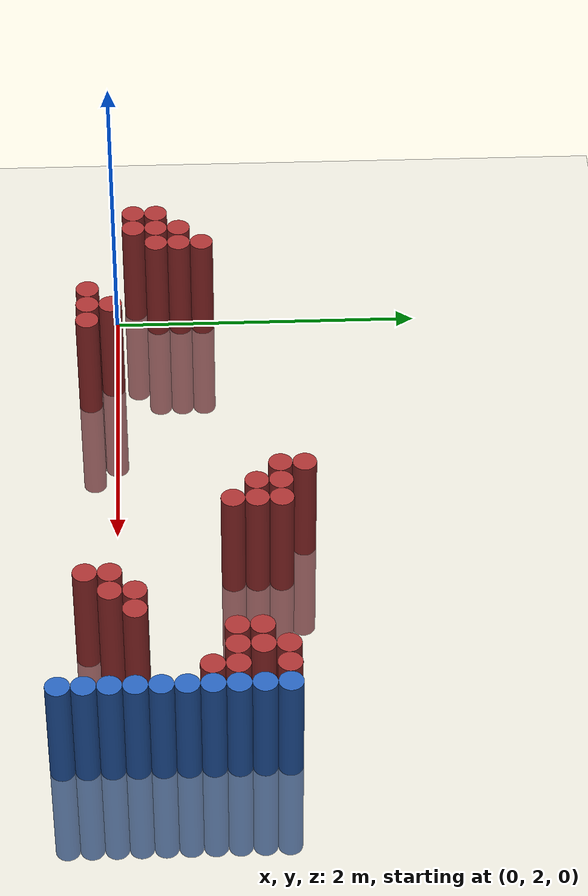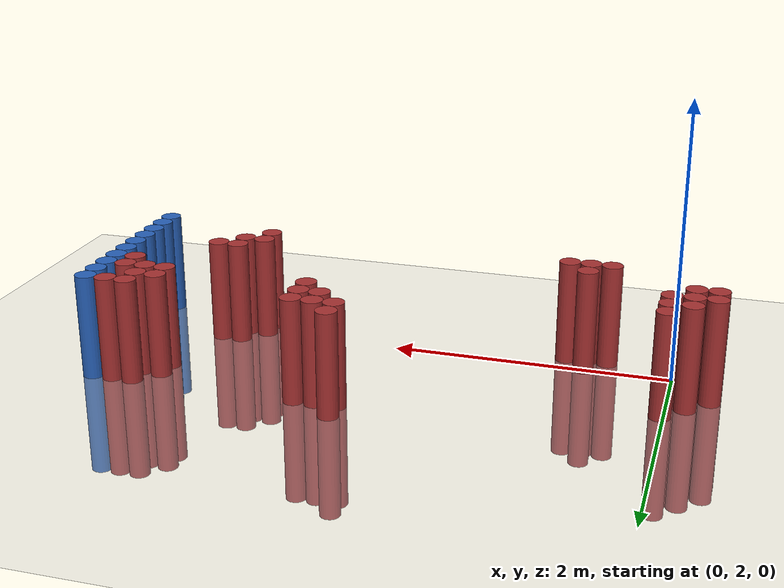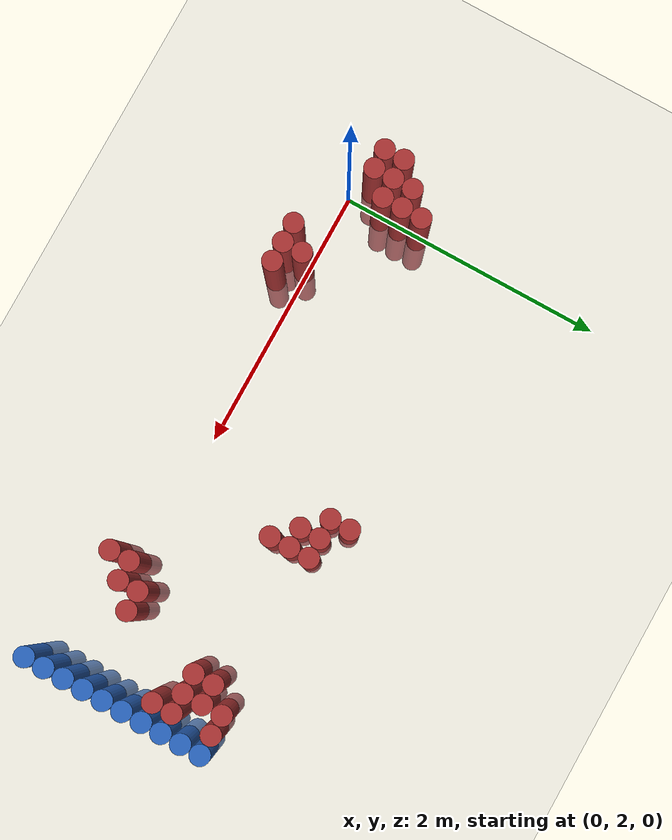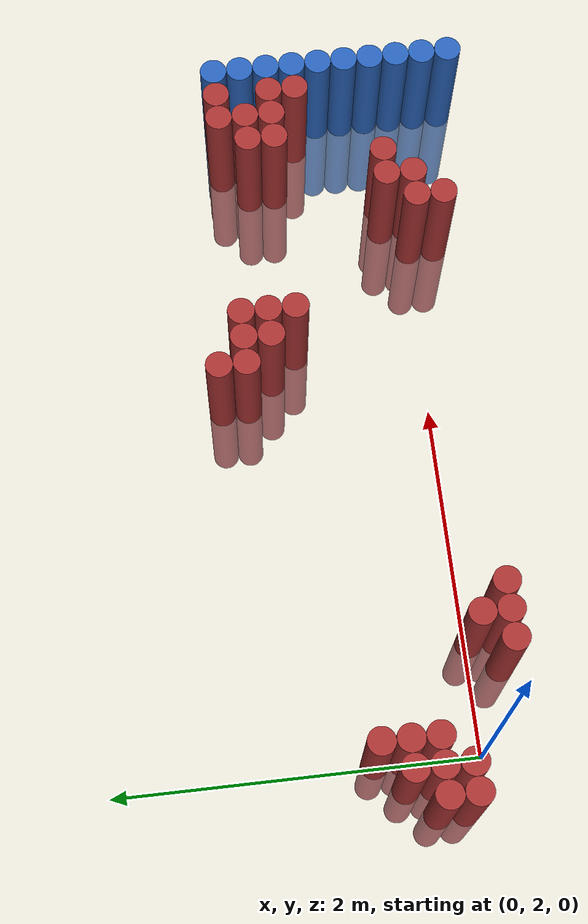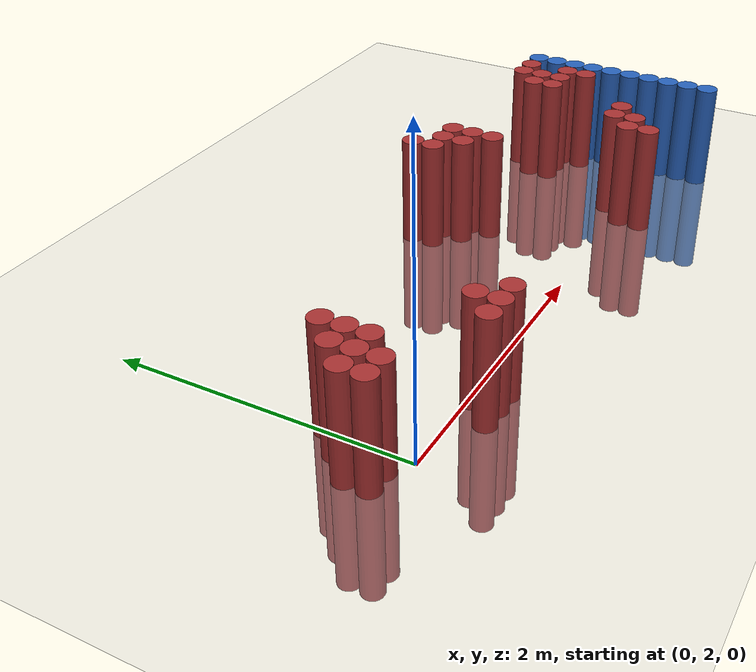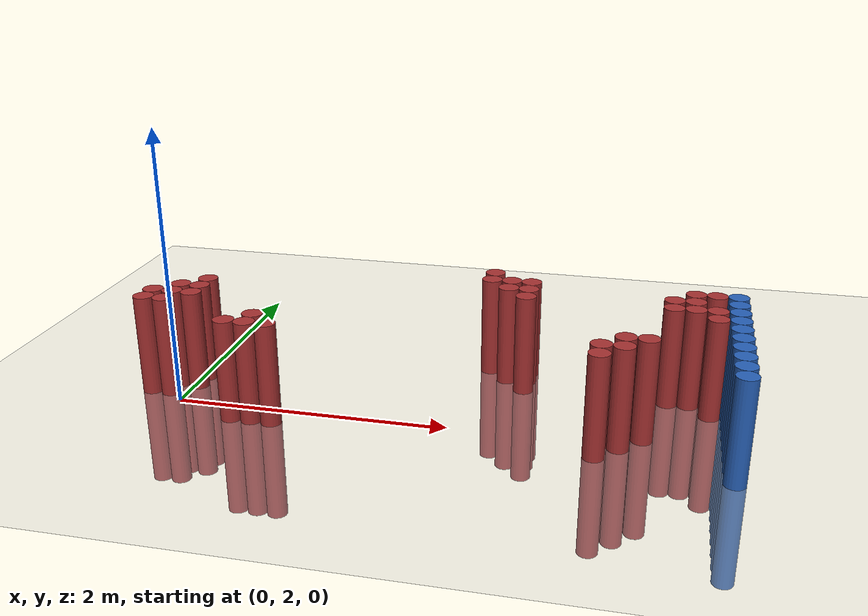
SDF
<sdf version="1.6">
 <world name="default">
  <model name="ground_plane">
   <static>1</static>
   <link name="link">
    <collision name="collision">
     <geometry><plane><normal>0 0 1</normal><size>100 100</size></plane></geometry>
     <surface><friction><ode><mu>100</mu><mu2>50</mu2></ode></friction></surface>
    </collision>
    <visual name="visual">
     <cast_shadows>0</cast_shadows>
     <geometry><plane><normal>0 0 1</normal><size>100 100</size></plane></geometry>
     <material>
      <script><uri>file://media/materials/scripts/gazebo.material</uri><name>Gazebo/Grey</name></script>
     </material>
    </visual>
   </link>
  </model>
  <model name="unit_cylinder_138">
   <static>1</static>
   <pose>3.925000 1.825000 0.000000 0.000000 0.000000 0.000000</pose>
   <link name="link">
    <inertial>
     <mass>1</mass>
     <inertia><ixx>0.145833</ixx><ixy>0</ixy><ixz>0</ixz><iyy>0.145833</iyy><iyz>0</iyz><izz>0.125</izz></inertia>
    </inertial>
    <collision name="collision">
     <geometry><cylinder><radius>0.075000</radius><length>1.5</length></cylinder></geometry>
    </collision>
    <visual name="visual">
     <geometry><cylinder><radius>0.075000</radius><length>1.5</length></cylinder></geometry>
     <material>
      <ambient>0.152000 0.379000 0.720000 1</ambient>
      <diffuse>0.152000 0.379000 0.720000 1</diffuse>
     </material>
     <material>
      <script><name>Gazebo/Grey</name><uri>file://media/materials/scripts/gazebo.material</uri></script>
     </material>
    </visual>
   </link>
  </model>
  <model name="unit_cylinder_140">
   <static>1</static>
   <pose>3.925000 1.975000 0.000000 0.000000 0.000000 0.000000</pose>
   <link name="link">
    <inertial>
     <mass>1</mass>
     <inertia><ixx>0.145833</ixx><ixy>0</ixy><ixz>0</ixz><iyy>0.145833</iyy><iyz>0</iyz><izz>0.125</izz></inertia>
    </inertial>
    <collision name="collision">
     <geometry><cylinder><radius>0.075000</radius><length>1.5</length></cylinder></geometry>
    </collision>
    <visual name="visual">
     <geometry><cylinder><radius>0.075000</radius><length>1.5</length></cylinder></geometry>
     <material>
      <ambient>0.152000 0.379000 0.720000 1</ambient>
      <diffuse>0.152000 0.379000 0.720000 1</diffuse>
     </material>
     <material>
      <script><name>Gazebo/Grey</name><uri>file://media/materials/scripts/gazebo.material</uri></script>
     </material>
    </visual>
   </link>
  </model>
  <model name="unit_cylinder_142">
   <static>1</static>
   <pose>3.925000 2.125000 0.000000 0.000000 0.000000 0.000000</pose>
   <link name="link">
    <inertial>
     <mass>1</mass>
     <inertia><ixx>0.145833</ixx><ixy>0</ixy><ixz>0</ixz><iyy>0.145833</iyy><iyz>0</iyz><izz>0.125</izz></inertia>
    </inertial>
    <collision name="collision">
     <geometry><cylinder><radius>0.075000</radius><length>1.5</length></cylinder></geometry>
    </collision>
    <visual name="visual">
     <geometry><cylinder><radius>0.075000</radius><length>1.5</length></cylinder></geometry>
     <material>
      <ambient>0.152000 0.379000 0.720000 1</ambient>
      <diffuse>0.152000 0.379000 0.720000 1</diffuse>
     </material>
     <material>
      <script><name>Gazebo/Grey</name><uri>file://media/materials/scripts/gazebo.material</uri></script>
     </material>
    </visual>
   </link>
  </model>
  <model name="unit_cylinder_144">
   <static>1</static>
   <pose>3.925000 2.275000 0.000000 0.000000 0.000000 0.000000</pose>
   <link name="link">
    <inertial>
     <mass>1</mass>
     <inertia><ixx>0.145833</ixx><ixy>0</ixy><ixz>0</ixz><iyy>0.145833</iyy><iyz>0</iyz><izz>0.125</izz></inertia>
    </inertial>
    <collision name="collision">
     <geometry><cylinder><radius>0.075000</radius><length>1.5</length></cylinder></geometry>
    </collision>
    <visual name="visual">
     <geometry><cylinder><radius>0.075000</radius><length>1.5</length></cylinder></geometry>
     <material>
      <ambient>0.152000 0.379000 0.720000 1</ambient>
      <diffuse>0.152000 0.379000 0.720000 1</diffuse>
     </material>
     <material>
      <script><name>Gazebo/Grey</name><uri>file://media/materials/scripts/gazebo.material</uri></script>
     </material>
    </visual>
   </link>
  </model>
  <model name="unit_cylinder_146">
   <static>1</static>
   <pose>3.925000 2.425000 0.000000 0.000000 0.000000 0.000000</pose>
   <link name="link">
    <inertial>
     <mass>1</mass>
     <inertia><ixx>0.145833</ixx><ixy>0</ixy><ixz>0</ixz><iyy>0.145833</iyy><iyz>0</iyz><izz>0.125</izz></inertia>
    </inertial>
    <collision name="collision">
     <geometry><cylinder><radius>0.075000</radius><length>1.5</length></cylinder></geometry>
    </collision>
    <visual name="visual">
     <geometry><cylinder><radius>0.075000</radius><length>1.5</length></cylinder></geometry>
     <material>
      <ambient>0.152000 0.379000 0.720000 1</ambient>
      <diffuse>0.152000 0.379000 0.720000 1</diffuse>
     </material>
     <material>
      <script><name>Gazebo/Grey</name><uri>file://media/materials/scripts/gazebo.material</uri></script>
     </material>
    </visual>
   </link>
  </model>
  <model name="unit_cylinder_148">
   <static>1</static>
   <pose>3.925000 2.575000 0.000000 0.000000 0.000000 0.000000</pose>
   <link name="link">
    <inertial>
     <mass>1</mass>
     <inertia><ixx>0.145833</ixx><ixy>0</ixy><ixz>0</ixz><iyy>0.145833</iyy><iyz>0</iyz><izz>0.125</izz></inertia>
    </inertial>
    <collision name="collision">
     <geometry><cylinder><radius>0.075000</radius><length>1.5</length></cylinder></geometry>
    </collision>
    <visual name="visual">
     <geometry><cylinder><radius>0.075000</radius><length>1.5</length></cylinder></geometry>
     <material>
      <ambient>0.152000 0.379000 0.720000 1</ambient>
      <diffuse>0.152000 0.379000 0.720000 1</diffuse>
     </material>
     <material>
      <script><name>Gazebo/Grey</name><uri>file://media/materials/scripts/gazebo.material</uri></script>
     </material>
    </visual>
   </link>
  </model>
  <model name="unit_cylinder_150">
   <static>1</static>
   <pose>3.925000 2.725000 0.000000 0.000000 0.000000 0.000000</pose>
   <link name="link">
    <inertial>
     <mass>1</mass>
     <inertia><ixx>0.145833</ixx><ixy>0</ixy><ixz>0</ixz><iyy>0.145833</iyy><iyz>0</iyz><izz>0.125</izz></inertia>
    </inertial>
    <collision name="collision">
     <geometry><cylinder><radius>0.075000</radius><length>1.5</length></cylinder></geometry>
    </collision>
    <visual name="visual">
     <geometry><cylinder><radius>0.075000</radius><length>1.5</length></cylinder></geometry>
     <material>
      <ambient>0.152000 0.379000 0.720000 1</ambient>
      <diffuse>0.152000 0.379000 0.720000 1</diffuse>
     </material>
     <material>
      <script><name>Gazebo/Grey</name><uri>file://media/materials/scripts/gazebo.material</uri></script>
     </material>
    </visual>
   </link>
  </model>
  <model name="unit_cylinder_152">
   <static>1</static>
   <pose>3.925000 2.875000 0.000000 0.000000 0.000000 0.000000</pose>
   <link name="link">
    <inertial>
     <mass>1</mass>
     <inertia><ixx>0.145833</ixx><ixy>0</ixy><ixz>0</ixz><iyy>0.145833</iyy><iyz>0</iyz><izz>0.125</izz></inertia>
    </inertial>
    <collision name="collision">
     <geometry><cylinder><radius>0.075000</radius><length>1.5</length></cylinder></geometry>
    </collision>
    <visual name="visual">
     <geometry><cylinder><radius>0.075000</radius><length>1.5</length></cylinder></geometry>
     <material>
      <ambient>0.152000 0.379000 0.720000 1</ambient>
      <diffuse>0.152000 0.379000 0.720000 1</diffuse>
     </material>
     <material>
      <script><name>Gazebo/Grey</name><uri>file://media/materials/scripts/gazebo.material</uri></script>
     </material>
    </visual>
   </link>
  </model>
  <model name="unit_cylinder_154">
   <static>1</static>
   <pose>3.925000 3.025000 0.000000 0.000000 0.000000 0.000000</pose>
   <link name="link">
    <inertial>
     <mass>1</mass>
     <inertia><ixx>0.145833</ixx><ixy>0</ixy><ixz>0</ixz><iyy>0.145833</iyy><iyz>0</iyz><izz>0.125</izz></inertia>
    </inertial>
    <collision name="collision">
     <geometry><cylinder><radius>0.075000</radius><length>1.5</length></cylinder></geometry>
    </collision>
    <visual name="visual">
     <geometry><cylinder><radius>0.075000</radius><length>1.5</length></cylinder></geometry>
     <material>
      <ambient>0.152000 0.379000 0.720000 1</ambient>
      <diffuse>0.152000 0.379000 0.720000 1</diffuse>
     </material>
     <material>
      <script><name>Gazebo/Grey</name><uri>file://media/materials/scripts/gazebo.material</uri></script>
     </material>
    </visual>
   </link>
  </model>
  <model name="unit_cylinder_411">
   <static>1</static>
   <pose>-0.275000 2.125000 0.000000 0.000000 0.000000 0.000000</pose>
   <link name="link">
    <inertial>
     <mass>1</mass>
     <inertia><ixx>0.145833</ixx><ixy>0</ixy><ixz>0</ixz><iyy>0.145833</iyy><iyz>0</iyz><izz>0.125</izz></inertia>
    </inertial>
    <collision name="collision">
     <geometry><cylinder><radius>0.075000</radius><length>1.5</length></cylinder></geometry>
    </collision>
    <visual name="visual">
     <geometry><cylinder><radius>0.075000</radius><length>1.5</length></cylinder></geometry>
     <material>
      <ambient>0.648000 0.192000 0.192000 1</ambient>
      <diffuse>0.648000 0.192000 0.192000 1</diffuse>
     </material>
     <material>
      <script><name>Gazebo/Grey</name><uri>file://media/materials/scripts/gazebo.material</uri></script>
     </material>
    </visual>
   </link>
  </model>
  <model name="unit_cylinder_412">
   <static>1</static>
   <pose>-0.275000 2.275000 0.000000 0.000000 0.000000 0.000000</pose>
   <link name="link">
    <inertial>
     <mass>1</mass>
     <inertia><ixx>0.145833</ixx><ixy>0</ixy><ixz>0</ixz><iyy>0.145833</iyy><iyz>0</iyz><izz>0.125</izz></inertia>
    </inertial>
    <collision name="collision">
     <geometry><cylinder><radius>0.075000</radius><length>1.5</length></cylinder></geometry>
    </collision>
    <visual name="visual">
     <geometry><cylinder><radius>0.075000</radius><length>1.5</length></cylinder></geometry>
     <material>
      <ambient>0.648000 0.192000 0.192000 1</ambient>
      <diffuse>0.648000 0.192000 0.192000 1</diffuse>
     </material>
     <material>
      <script><name>Gazebo/Grey</name><uri>file://media/materials/scripts/gazebo.material</uri></script>
     </material>
    </visual>
   </link>
  </model>
  <model name="unit_cylinder_421">
   <static>1</static>
   <pose>-0.125000 2.125000 0.000000 0.000000 0.000000 0.000000</pose>
   <link name="link">
    <inertial>
     <mass>1</mass>
     <inertia><ixx>0.145833</ixx><ixy>0</ixy><ixz>0</ixz><iyy>0.145833</iyy><iyz>0</iyz><izz>0.125</izz></inertia>
    </inertial>
    <collision name="collision">
     <geometry><cylinder><radius>0.075000</radius><length>1.5</length></cylinder></geometry>
    </collision>
    <visual name="visual">
     <geometry><cylinder><radius>0.075000</radius><length>1.5</length></cylinder></geometry>
     <material>
      <ambient>0.648000 0.192000 0.192000 1</ambient>
      <diffuse>0.648000 0.192000 0.192000 1</diffuse>
     </material>
     <material>
      <script><name>Gazebo/Grey</name><uri>file://media/materials/scripts/gazebo.material</uri></script>
     </material>
    </visual>
   </link>
  </model>
  <model name="unit_cylinder_422">
   <static>1</static>
   <pose>-0.125000 2.275000 0.000000 0.000000 0.000000 0.000000</pose>
   <link name="link">
    <inertial>
     <mass>1</mass>
     <inertia><ixx>0.145833</ixx><ixy>0</ixy><ixz>0</ixz><iyy>0.145833</iyy><iyz>0</iyz><izz>0.125</izz></inertia>
    </inertial>
    <collision name="collision">
     <geometry><cylinder><radius>0.075000</radius><length>1.5</length></cylinder></geometry>
    </collision>
    <visual name="visual">
     <geometry><cylinder><radius>0.075000</radius><length>1.5</length></cylinder></geometry>
     <material>
      <ambient>0.648000 0.192000 0.192000 1</ambient>
      <diffuse>0.648000 0.192000 0.192000 1</diffuse>
     </material>
     <material>
      <script><name>Gazebo/Grey</name><uri>file://media/materials/scripts/gazebo.material</uri></script>
     </material>
    </visual>
   </link>
  </model>
  <model name="unit_cylinder_423">
   <static>1</static>
   <pose>-0.125000 2.425000 0.000000 0.000000 0.000000 0.000000</pose>
   <link name="link">
    <inertial>
     <mass>1</mass>
     <inertia><ixx>0.145833</ixx><ixy>0</ixy><ixz>0</ixz><iyy>0.145833</iyy><iyz>0</iyz><izz>0.125</izz></inertia>
    </inertial>
    <collision name="collision">
     <geometry><cylinder><radius>0.075000</radius><length>1.5</length></cylinder></geometry>
    </collision>
    <visual name="visual">
     <geometry><cylinder><radius>0.075000</radius><length>1.5</length></cylinder></geometry>
     <material>
      <ambient>0.648000 0.192000 0.192000 1</ambient>
      <diffuse>0.648000 0.192000 0.192000 1</diffuse>
     </material>
     <material>
      <script><name>Gazebo/Grey</name><uri>file://media/materials/scripts/gazebo.material</uri></script>
     </material>
    </visual>
   </link>
  </model>
  <model name="unit_cylinder_435">
   <static>1</static>
   <pose>0.025000 2.275000 0.000000 0.000000 0.000000 0.000000</pose>
   <link name="link">
    <inertial>
     <mass>1</mass>
     <inertia><ixx>0.145833</ixx><ixy>0</ixy><ixz>0</ixz><iyy>0.145833</iyy><iyz>0</iyz><izz>0.125</izz></inertia>
    </inertial>
    <collision name="collision">
     <geometry><cylinder><radius>0.075000</radius><length>1.5</length></cylinder></geometry>
    </collision>
    <visual name="visual">
     <geometry><cylinder><radius>0.075000</radius><length>1.5</length></cylinder></geometry>
     <material>
      <ambient>0.648000 0.192000 0.192000 1</ambient>
      <diffuse>0.648000 0.192000 0.192000 1</diffuse>
     </material>
     <material>
      <script><name>Gazebo/Grey</name><uri>file://media/materials/scripts/gazebo.material</uri></script>
     </material>
    </visual>
   </link>
  </model>
  <model name="unit_cylinder_436">
   <static>1</static>
   <pose>0.025000 2.425000 0.000000 0.000000 0.000000 0.000000</pose>
   <link name="link">
    <inertial>
     <mass>1</mass>
     <inertia><ixx>0.145833</ixx><ixy>0</ixy><ixz>0</ixz><iyy>0.145833</iyy><iyz>0</iyz><izz>0.125</izz></inertia>
    </inertial>
    <collision name="collision">
     <geometry><cylinder><radius>0.075000</radius><length>1.5</length></cylinder></geometry>
    </collision>
    <visual name="visual">
     <geometry><cylinder><radius>0.075000</radius><length>1.5</length></cylinder></geometry>
     <material>
      <ambient>0.648000 0.192000 0.192000 1</ambient>
      <diffuse>0.648000 0.192000 0.192000 1</diffuse>
     </material>
     <material>
      <script><name>Gazebo/Grey</name><uri>file://media/materials/scripts/gazebo.material</uri></script>
     </material>
    </visual>
   </link>
  </model>
  <model name="unit_cylinder_437">
   <static>1</static>
   <pose>0.025000 2.575000 0.000000 0.000000 0.000000 0.000000</pose>
   <link name="link">
    <inertial>
     <mass>1</mass>
     <inertia><ixx>0.145833</ixx><ixy>0</ixy><ixz>0</ixz><iyy>0.145833</iyy><iyz>0</iyz><izz>0.125</izz></inertia>
    </inertial>
    <collision name="collision">
     <geometry><cylinder><radius>0.075000</radius><length>1.5</length></cylinder></geometry>
    </collision>
    <visual name="visual">
     <geometry><cylinder><radius>0.075000</radius><length>1.5</length></cylinder></geometry>
     <material>
      <ambient>0.648000 0.192000 0.192000 1</ambient>
      <diffuse>0.648000 0.192000 0.192000 1</diffuse>
     </material>
     <material>
      <script><name>Gazebo/Grey</name><uri>file://media/materials/scripts/gazebo.material</uri></script>
     </material>
    </visual>
   </link>
  </model>
  <model name="unit_cylinder_452">
   <static>1</static>
   <pose>0.475000 1.825000 0.000000 0.000000 0.000000 0.000000</pose>
   <link name="link">
    <inertial>
     <mass>1</mass>
     <inertia><ixx>0.145833</ixx><ixy>0</ixy><ixz>0</ixz><iyy>0.145833</iyy><iyz>0</iyz><izz>0.125</izz></inertia>
    </inertial>
    <collision name="collision">
     <geometry><cylinder><radius>0.075000</radius><length>1.5</length></cylinder></geometry>
    </collision>
    <visual name="visual">
     <geometry><cylinder><radius>0.075000</radius><length>1.5</length></cylinder></geometry>
     <material>
      <ambient>0.648000 0.192000 0.192000 1</ambient>
      <diffuse>0.648000 0.192000 0.192000 1</diffuse>
     </material>
     <material>
      <script><name>Gazebo/Grey</name><uri>file://media/materials/scripts/gazebo.material</uri></script>
     </material>
    </visual>
   </link>
  </model>
  <model name="unit_cylinder_454">
   <static>1</static>
   <pose>0.625000 1.825000 0.000000 0.000000 0.000000 0.000000</pose>
   <link name="link">
    <inertial>
     <mass>1</mass>
     <inertia><ixx>0.145833</ixx><ixy>0</ixy><ixz>0</ixz><iyy>0.145833</iyy><iyz>0</iyz><izz>0.125</izz></inertia>
    </inertial>
    <collision name="collision">
     <geometry><cylinder><radius>0.075000</radius><length>1.5</length></cylinder></geometry>
    </collision>
    <visual name="visual">
     <geometry><cylinder><radius>0.075000</radius><length>1.5</length></cylinder></geometry>
     <material>
      <ambient>0.648000 0.192000 0.192000 1</ambient>
      <diffuse>0.648000 0.192000 0.192000 1</diffuse>
     </material>
     <material>
      <script><name>Gazebo/Grey</name><uri>file://media/materials/scripts/gazebo.material</uri></script>
     </material>
    </visual>
   </link>
  </model>
  <model name="unit_cylinder_455">
   <static>1</static>
   <pose>0.625000 1.975000 0.000000 0.000000 0.000000 0.000000</pose>
   <link name="link">
    <inertial>
     <mass>1</mass>
     <inertia><ixx>0.145833</ixx><ixy>0</ixy><ixz>0</ixz><iyy>0.145833</iyy><iyz>0</iyz><izz>0.125</izz></inertia>
    </inertial>
    <collision name="collision">
     <geometry><cylinder><radius>0.075000</radius><length>1.5</length></cylinder></geometry>
    </collision>
    <visual name="visual">
     <geometry><cylinder><radius>0.075000</radius><length>1.5</length></cylinder></geometry>
     <material>
      <ambient>0.648000 0.192000 0.192000 1</ambient>
      <diffuse>0.648000 0.192000 0.192000 1</diffuse>
     </material>
     <material>
      <script><name>Gazebo/Grey</name><uri>file://media/materials/scripts/gazebo.material</uri></script>
     </material>
    </visual>
   </link>
  </model>
  <model name="unit_cylinder_458">
   <static>1</static>
   <pose>0.775000 1.825000 0.000000 0.000000 0.000000 0.000000</pose>
   <link name="link">
    <inertial>
     <mass>1</mass>
     <inertia><ixx>0.145833</ixx><ixy>0</ixy><ixz>0</ixz><iyy>0.145833</iyy><iyz>0</iyz><izz>0.125</izz></inertia>
    </inertial>
    <collision name="collision">
     <geometry><cylinder><radius>0.075000</radius><length>1.5</length></cylinder></geometry>
    </collision>
    <visual name="visual">
     <geometry><cylinder><radius>0.075000</radius><length>1.5</length></cylinder></geometry>
     <material>
      <ambient>0.648000 0.192000 0.192000 1</ambient>
      <diffuse>0.648000 0.192000 0.192000 1</diffuse>
     </material>
     <material>
      <script><name>Gazebo/Grey</name><uri>file://media/materials/scripts/gazebo.material</uri></script>
     </material>
    </visual>
   </link>
  </model>
  <model name="unit_cylinder_475">
   <static>1</static>
   <pose>2.125000 3.025000 0.000000 0.000000 0.000000 0.000000</pose>
   <link name="link">
    <inertial>
     <mass>1</mass>
     <inertia><ixx>0.145833</ixx><ixy>0</ixy><ixz>0</ixz><iyy>0.145833</iyy><iyz>0</iyz><izz>0.125</izz></inertia>
    </inertial>
    <collision name="collision">
     <geometry><cylinder><radius>0.075000</radius><length>1.5</length></cylinder></geometry>
    </collision>
    <visual name="visual">
     <geometry><cylinder><radius>0.075000</radius><length>1.5</length></cylinder></geometry>
     <material>
      <ambient>0.648000 0.192000 0.192000 1</ambient>
      <diffuse>0.648000 0.192000 0.192000 1</diffuse>
     </material>
     <material>
      <script><name>Gazebo/Grey</name><uri>file://media/materials/scripts/gazebo.material</uri></script>
     </material>
    </visual>
   </link>
  </model>
  <model name="unit_cylinder_476">
   <static>1</static>
   <pose>2.125000 3.175000 0.000000 0.000000 0.000000 0.000000</pose>
   <link name="link">
    <inertial>
     <mass>1</mass>
     <inertia><ixx>0.145833</ixx><ixy>0</ixy><ixz>0</ixz><iyy>0.145833</iyy><iyz>0</iyz><izz>0.125</izz></inertia>
    </inertial>
    <collision name="collision">
     <geometry><cylinder><radius>0.075000</radius><length>1.5</length></cylinder></geometry>
    </collision>
    <visual name="visual">
     <geometry><cylinder><radius>0.075000</radius><length>1.5</length></cylinder></geometry>
     <material>
      <ambient>0.648000 0.192000 0.192000 1</ambient>
      <diffuse>0.648000 0.192000 0.192000 1</diffuse>
     </material>
     <material>
      <script><name>Gazebo/Grey</name><uri>file://media/materials/scripts/gazebo.material</uri></script>
     </material>
    </visual>
   </link>
  </model>
  <model name="unit_cylinder_482">
   <static>1</static>
   <pose>2.275000 2.875000 0.000000 0.000000 0.000000 0.000000</pose>
   <link name="link">
    <inertial>
     <mass>1</mass>
     <inertia><ixx>0.145833</ixx><ixy>0</ixy><ixz>0</ixz><iyy>0.145833</iyy><iyz>0</iyz><izz>0.125</izz></inertia>
    </inertial>
    <collision name="collision">
     <geometry><cylinder><radius>0.075000</radius><length>1.5</length></cylinder></geometry>
    </collision>
    <visual name="visual">
     <geometry><cylinder><radius>0.075000</radius><length>1.5</length></cylinder></geometry>
     <material>
      <ambient>0.648000 0.192000 0.192000 1</ambient>
      <diffuse>0.648000 0.192000 0.192000 1</diffuse>
     </material>
     <material>
      <script><name>Gazebo/Grey</name><uri>file://media/materials/scripts/gazebo.material</uri></script>
     </material>
    </visual>
   </link>
  </model>
  <model name="unit_cylinder_483">
   <static>1</static>
   <pose>2.275000 3.025000 0.000000 0.000000 0.000000 0.000000</pose>
   <link name="link">
    <inertial>
     <mass>1</mass>
     <inertia><ixx>0.145833</ixx><ixy>0</ixy><ixz>0</ixz><iyy>0.145833</iyy><iyz>0</iyz><izz>0.125</izz></inertia>
    </inertial>
    <collision name="collision">
     <geometry><cylinder><radius>0.075000</radius><length>1.5</length></cylinder></geometry>
    </collision>
    <visual name="visual">
     <geometry><cylinder><radius>0.075000</radius><length>1.5</length></cylinder></geometry>
     <material>
      <ambient>0.648000 0.192000 0.192000 1</ambient>
      <diffuse>0.648000 0.192000 0.192000 1</diffuse>
     </material>
     <material>
      <script><name>Gazebo/Grey</name><uri>file://media/materials/scripts/gazebo.material</uri></script>
     </material>
    </visual>
   </link>
  </model>
  <model name="unit_cylinder_485">
   <static>1</static>
   <pose>2.425000 2.725000 0.000000 0.000000 0.000000 0.000000</pose>
   <link name="link">
    <inertial>
     <mass>1</mass>
     <inertia><ixx>0.145833</ixx><ixy>0</ixy><ixz>0</ixz><iyy>0.145833</iyy><iyz>0</iyz><izz>0.125</izz></inertia>
    </inertial>
    <collision name="collision">
     <geometry><cylinder><radius>0.075000</radius><length>1.5</length></cylinder></geometry>
    </collision>
    <visual name="visual">
     <geometry><cylinder><radius>0.075000</radius><length>1.5</length></cylinder></geometry>
     <material>
      <ambient>0.648000 0.192000 0.192000 1</ambient>
      <diffuse>0.648000 0.192000 0.192000 1</diffuse>
     </material>
     <material>
      <script><name>Gazebo/Grey</name><uri>file://media/materials/scripts/gazebo.material</uri></script>
     </material>
    </visual>
   </link>
  </model>
  <model name="unit_cylinder_486">
   <static>1</static>
   <pose>2.425000 2.875000 0.000000 0.000000 0.000000 0.000000</pose>
   <link name="link">
    <inertial>
     <mass>1</mass>
     <inertia><ixx>0.145833</ixx><ixy>0</ixy><ixz>0</ixz><iyy>0.145833</iyy><iyz>0</iyz><izz>0.125</izz></inertia>
    </inertial>
    <collision name="collision">
     <geometry><cylinder><radius>0.075000</radius><length>1.5</length></cylinder></geometry>
    </collision>
    <visual name="visual">
     <geometry><cylinder><radius>0.075000</radius><length>1.5</length></cylinder></geometry>
     <material>
      <ambient>0.648000 0.192000 0.192000 1</ambient>
      <diffuse>0.648000 0.192000 0.192000 1</diffuse>
     </material>
     <material>
      <script><name>Gazebo/Grey</name><uri>file://media/materials/scripts/gazebo.material</uri></script>
     </material>
    </visual>
   </link>
  </model>
  <model name="unit_cylinder_487">
   <static>1</static>
   <pose>2.425000 3.025000 0.000000 0.000000 0.000000 0.000000</pose>
   <link name="link">
    <inertial>
     <mass>1</mass>
     <inertia><ixx>0.145833</ixx><ixy>0</ixy><ixz>0</ixz><iyy>0.145833</iyy><iyz>0</iyz><izz>0.125</izz></inertia>
    </inertial>
    <collision name="collision">
     <geometry><cylinder><radius>0.075000</radius><length>1.5</length></cylinder></geometry>
    </collision>
    <visual name="visual">
     <geometry><cylinder><radius>0.075000</radius><length>1.5</length></cylinder></geometry>
     <material>
      <ambient>0.648000 0.192000 0.192000 1</ambient>
      <diffuse>0.648000 0.192000 0.192000 1</diffuse>
     </material>
     <material>
      <script><name>Gazebo/Grey</name><uri>file://media/materials/scripts/gazebo.material</uri></script>
     </material>
    </visual>
   </link>
  </model>
  <model name="unit_cylinder_496">
   <static>1</static>
   <pose>3.025000 1.825000 0.000000 0.000000 0.000000 0.000000</pose>
   <link name="link">
    <inertial>
     <mass>1</mass>
     <inertia><ixx>0.145833</ixx><ixy>0</ixy><ixz>0</ixz><iyy>0.145833</iyy><iyz>0</iyz><izz>0.125</izz></inertia>
    </inertial>
    <collision name="collision">
     <geometry><cylinder><radius>0.075000</radius><length>1.5</length></cylinder></geometry>
    </collision>
    <visual name="visual">
     <geometry><cylinder><radius>0.075000</radius><length>1.5</length></cylinder></geometry>
     <material>
      <ambient>0.648000 0.192000 0.192000 1</ambient>
      <diffuse>0.648000 0.192000 0.192000 1</diffuse>
     </material>
     <material>
      <script><name>Gazebo/Grey</name><uri>file://media/materials/scripts/gazebo.material</uri></script>
     </material>
    </visual>
   </link>
  </model>
  <model name="unit_cylinder_497">
   <static>1</static>
   <pose>3.025000 1.975000 0.000000 0.000000 0.000000 0.000000</pose>
   <link name="link">
    <inertial>
     <mass>1</mass>
     <inertia><ixx>0.145833</ixx><ixy>0</ixy><ixz>0</ixz><iyy>0.145833</iyy><iyz>0</iyz><izz>0.125</izz></inertia>
    </inertial>
    <collision name="collision">
     <geometry><cylinder><radius>0.075000</radius><length>1.5</length></cylinder></geometry>
    </collision>
    <visual name="visual">
     <geometry><cylinder><radius>0.075000</radius><length>1.5</length></cylinder></geometry>
     <material>
      <ambient>0.648000 0.192000 0.192000 1</ambient>
      <diffuse>0.648000 0.192000 0.192000 1</diffuse>
     </material>
     <material>
      <script><name>Gazebo/Grey</name><uri>file://media/materials/scripts/gazebo.material</uri></script>
     </material>
    </visual>
   </link>
  </model>
  <model name="unit_cylinder_504">
   <static>1</static>
   <pose>3.175000 1.975000 0.000000 0.000000 0.000000 0.000000</pose>
   <link name="link">
    <inertial>
     <mass>1</mass>
     <inertia><ixx>0.145833</ixx><ixy>0</ixy><ixz>0</ixz><iyy>0.145833</iyy><iyz>0</iyz><izz>0.125</izz></inertia>
    </inertial>
    <collision name="collision">
     <geometry><cylinder><radius>0.075000</radius><length>1.5</length></cylinder></geometry>
    </collision>
    <visual name="visual">
     <geometry><cylinder><radius>0.075000</radius><length>1.5</length></cylinder></geometry>
     <material>
      <ambient>0.648000 0.192000 0.192000 1</ambient>
      <diffuse>0.648000 0.192000 0.192000 1</diffuse>
     </material>
     <material>
      <script><name>Gazebo/Grey</name><uri>file://media/materials/scripts/gazebo.material</uri></script>
     </material>
    </visual>
   </link>
  </model>
  <model name="unit_cylinder_505">
   <static>1</static>
   <pose>3.175000 2.125000 0.000000 0.000000 0.000000 0.000000</pose>
   <link name="link">
    <inertial>
     <mass>1</mass>
     <inertia><ixx>0.145833</ixx><ixy>0</ixy><ixz>0</ixz><iyy>0.145833</iyy><iyz>0</iyz><izz>0.125</izz></inertia>
    </inertial>
    <collision name="collision">
     <geometry><cylinder><radius>0.075000</radius><length>1.5</length></cylinder></geometry>
    </collision>
    <visual name="visual">
     <geometry><cylinder><radius>0.075000</radius><length>1.5</length></cylinder></geometry>
     <material>
      <ambient>0.648000 0.192000 0.192000 1</ambient>
      <diffuse>0.648000 0.192000 0.192000 1</diffuse>
     </material>
     <material>
      <script><name>Gazebo/Grey</name><uri>file://media/materials/scripts/gazebo.material</uri></script>
     </material>
    </visual>
   </link>
  </model>
  <model name="unit_cylinder_512">
   <static>1</static>
   <pose>3.325000 2.125000 0.000000 0.000000 0.000000 0.000000</pose>
   <link name="link">
    <inertial>
     <mass>1</mass>
     <inertia><ixx>0.145833</ixx><ixy>0</ixy><ixz>0</ixz><iyy>0.145833</iyy><iyz>0</iyz><izz>0.125</izz></inertia>
    </inertial>
    <collision name="collision">
     <geometry><cylinder><radius>0.075000</radius><length>1.5</length></cylinder></geometry>
    </collision>
    <visual name="visual">
     <geometry><cylinder><radius>0.075000</radius><length>1.5</length></cylinder></geometry>
     <material>
      <ambient>0.648000 0.192000 0.192000 1</ambient>
      <diffuse>0.648000 0.192000 0.192000 1</diffuse>
     </material>
     <material>
      <script><name>Gazebo/Grey</name><uri>file://media/materials/scripts/gazebo.material</uri></script>
     </material>
    </visual>
   </link>
  </model>
  <model name="unit_cylinder_520">
   <static>1</static>
   <pose>3.475000 2.725000 0.000000 0.000000 0.000000 0.000000</pose>
   <link name="link">
    <inertial>
     <mass>1</mass>
     <inertia><ixx>0.145833</ixx><ixy>0</ixy><ixz>0</ixz><iyy>0.145833</iyy><iyz>0</iyz><izz>0.125</izz></inertia>
    </inertial>
    <collision name="collision">
     <geometry><cylinder><radius>0.075000</radius><length>1.5</length></cylinder></geometry>
    </collision>
    <visual name="visual">
     <geometry><cylinder><radius>0.075000</radius><length>1.5</length></cylinder></geometry>
     <material>
      <ambient>0.648000 0.192000 0.192000 1</ambient>
      <diffuse>0.648000 0.192000 0.192000 1</diffuse>
     </material>
     <material>
      <script><name>Gazebo/Grey</name><uri>file://media/materials/scripts/gazebo.material</uri></script>
     </material>
    </visual>
   </link>
  </model>
  <model name="unit_cylinder_521">
   <static>1</static>
   <pose>3.475000 2.875000 0.000000 0.000000 0.000000 0.000000</pose>
   <link name="link">
    <inertial>
     <mass>1</mass>
     <inertia><ixx>0.145833</ixx><ixy>0</ixy><ixz>0</ixz><iyy>0.145833</iyy><iyz>0</iyz><izz>0.125</izz></inertia>
    </inertial>
    <collision name="collision">
     <geometry><cylinder><radius>0.075000</radius><length>1.5</length></cylinder></geometry>
    </collision>
    <visual name="visual">
     <geometry><cylinder><radius>0.075000</radius><length>1.5</length></cylinder></geometry>
     <material>
      <ambient>0.648000 0.192000 0.192000 1</ambient>
      <diffuse>0.648000 0.192000 0.192000 1</diffuse>
     </material>
     <material>
      <script><name>Gazebo/Grey</name><uri>file://media/materials/scripts/gazebo.material</uri></script>
     </material>
    </visual>
   </link>
  </model>
  <model name="unit_cylinder_530">
   <static>1</static>
   <pose>3.625000 2.725000 0.000000 0.000000 0.000000 0.000000</pose>
   <link name="link">
    <inertial>
     <mass>1</mass>
     <inertia><ixx>0.145833</ixx><ixy>0</ixy><ixz>0</ixz><iyy>0.145833</iyy><iyz>0</iyz><izz>0.125</izz></inertia>
    </inertial>
    <collision name="collision">
     <geometry><cylinder><radius>0.075000</radius><length>1.5</length></cylinder></geometry>
    </collision>
    <visual name="visual">
     <geometry><cylinder><radius>0.075000</radius><length>1.5</length></cylinder></geometry>
     <material>
      <ambient>0.648000 0.192000 0.192000 1</ambient>
      <diffuse>0.648000 0.192000 0.192000 1</diffuse>
     </material>
     <material>
      <script><name>Gazebo/Grey</name><uri>file://media/materials/scripts/gazebo.material</uri></script>
     </material>
    </visual>
   </link>
  </model>
  <model name="unit_cylinder_531">
   <static>1</static>
   <pose>3.625000 2.875000 0.000000 0.000000 0.000000 0.000000</pose>
   <link name="link">
    <inertial>
     <mass>1</mass>
     <inertia><ixx>0.145833</ixx><ixy>0</ixy><ixz>0</ixz><iyy>0.145833</iyy><iyz>0</iyz><izz>0.125</izz></inertia>
    </inertial>
    <collision name="collision">
     <geometry><cylinder><radius>0.075000</radius><length>1.5</length></cylinder></geometry>
    </collision>
    <visual name="visual">
     <geometry><cylinder><radius>0.075000</radius><length>1.5</length></cylinder></geometry>
     <material>
      <ambient>0.648000 0.192000 0.192000 1</ambient>
      <diffuse>0.648000 0.192000 0.192000 1</diffuse>
     </material>
     <material>
      <script><name>Gazebo/Grey</name><uri>file://media/materials/scripts/gazebo.material</uri></script>
     </material>
    </visual>
   </link>
  </model>
  <model name="unit_cylinder_532">
   <static>1</static>
   <pose>3.625000 3.025000 0.000000 0.000000 0.000000 0.000000</pose>
   <link name="link">
    <inertial>
     <mass>1</mass>
     <inertia><ixx>0.145833</ixx><ixy>0</ixy><ixz>0</ixz><iyy>0.145833</iyy><iyz>0</iyz><izz>0.125</izz></inertia>
    </inertial>
    <collision name="collision">
     <geometry><cylinder><radius>0.075000</radius><length>1.5</length></cylinder></geometry>
    </collision>
    <visual name="visual">
     <geometry><cylinder><radius>0.075000</radius><length>1.5</length></cylinder></geometry>
     <material>
      <ambient>0.648000 0.192000 0.192000 1</ambient>
      <diffuse>0.648000 0.192000 0.192000 1</diffuse>
     </material>
     <material>
      <script><name>Gazebo/Grey</name><uri>file://media/materials/scripts/gazebo.material</uri></script>
     </material>
    </visual>
   </link>
  </model>
  <model name="unit_cylinder_553">
   <static>1</static>
   <pose>3.775000 2.575000 0.000000 0.000000 0.000000 0.000000</pose>
   <link name="link">
    <inertial>
     <mass>1</mass>
     <inertia><ixx>0.145833</ixx><ixy>0</ixy><ixz>0</ixz><iyy>0.145833</iyy><iyz>0</iyz><izz>0.125</izz></inertia>
    </inertial>
    <collision name="collision">
     <geometry><cylinder><radius>0.075000</radius><length>1.5</length></cylinder></geometry>
    </collision>
    <visual name="visual">
     <geometry><cylinder><radius>0.075000</radius><length>1.5</length></cylinder></geometry>
     <material>
      <ambient>0.648000 0.192000 0.192000 1</ambient>
      <diffuse>0.648000 0.192000 0.192000 1</diffuse>
     </material>
     <material>
      <script><name>Gazebo/Grey</name><uri>file://media/materials/scripts/gazebo.material</uri></script>
     </material>
    </visual>
   </link>
  </model>
  <model name="unit_cylinder_554">
   <static>1</static>
   <pose>3.775000 2.725000 0.000000 0.000000 0.000000 0.000000</pose>
   <link name="link">
    <inertial>
     <mass>1</mass>
     <inertia><ixx>0.145833</ixx><ixy>0</ixy><ixz>0</ixz><iyy>0.145833</iyy><iyz>0</iyz><izz>0.125</izz></inertia>
    </inertial>
    <collision name="collision">
     <geometry><cylinder><radius>0.075000</radius><length>1.5</length></cylinder></geometry>
    </collision>
    <visual name="visual">
     <geometry><cylinder><radius>0.075000</radius><length>1.5</length></cylinder></geometry>
     <material>
      <ambient>0.648000 0.192000 0.192000 1</ambient>
      <diffuse>0.648000 0.192000 0.192000 1</diffuse>
     </material>
     <material>
      <script><name>Gazebo/Grey</name><uri>file://media/materials/scripts/gazebo.material</uri></script>
     </material>
    </visual>
   </link>
  </model>
  <model name="unit_cylinder_555">
   <static>1</static>
   <pose>3.775000 3.025000 0.000000 0.000000 0.000000 0.000000</pose>
   <link name="link">
    <inertial>
     <mass>1</mass>
     <inertia><ixx>0.145833</ixx><ixy>0</ixy><ixz>0</ixz><iyy>0.145833</iyy><iyz>0</iyz><izz>0.125</izz></inertia>
    </inertial>
    <collision name="collision">
     <geometry><cylinder><radius>0.075000</radius><length>1.5</length></cylinder></geometry>
    </collision>
    <visual name="visual">
     <geometry><cylinder><radius>0.075000</radius><length>1.5</length></cylinder></geometry>
     <material>
      <ambient>0.648000 0.192000 0.192000 1</ambient>
      <diffuse>0.648000 0.192000 0.192000 1</diffuse>
     </material>
     <material>
      <script><name>Gazebo/Grey</name><uri>file://media/materials/scripts/gazebo.material</uri></script>
     </material>
    </visual>
   </link>
  </model>
  <model name="unit_cylinder_590">
   <static>1</static>
   <pose>3.925000 1.675000 0.000000 0.000000 0.000000 0.000000</pose>
   <link name="link">
    <inertial>
     <mass>1</mass>
     <inertia><ixx>0.145833</ixx><ixy>0</ixy><ixz>0</ixz><iyy>0.145833</iyy><iyz>0</iyz><izz>0.125</izz></inertia>
    </inertial>
    <collision name="collision">
     <geometry><cylinder><radius>0.075000</radius><length>1.5</length></cylinder></geometry>
    </collision>
    <visual name="visual">
     <geometry><cylinder><radius>0.075000</radius><length>1.5</length></cylinder></geometry>
     <material>
      <ambient>0.152000 0.379000 0.720000 1</ambient>
      <diffuse>0.152000 0.379000 0.720000 1</diffuse>
     </material>
     <material>
      <script><name>Gazebo/Grey</name><uri>file://media/materials/scripts/gazebo.material</uri></script>
     </material>
    </visual>
   </link>
  </model>
  <model name="unit_cylinder_591">
   <static>1</static>
   <pose>3.925000 1.825000 0.000000 0.000000 0.000000 0.000000</pose>
   <link name="link">
    <inertial>
     <mass>1</mass>
     <inertia><ixx>0.145833</ixx><ixy>0</ixy><ixz>0</ixz><iyy>0.145833</iyy><iyz>0</iyz><izz>0.125</izz></inertia>
    </inertial>
    <collision name="collision">
     <geometry><cylinder><radius>0.075000</radius><length>1.5</length></cylinder></geometry>
    </collision>
    <visual name="visual">
     <geometry><cylinder><radius>0.075000</radius><length>1.5</length></cylinder></geometry>
     <material>
      <ambient>0.152000 0.379000 0.720000 1</ambient>
      <diffuse>0.152000 0.379000 0.720000 1</diffuse>
     </material>
     <material>
      <script><name>Gazebo/Grey</name><uri>file://media/materials/scripts/gazebo.material</uri></script>
     </material>
    </visual>
   </link>
  </model>
  <model name="unit_cylinder_592">
   <static>1</static>
   <pose>3.925000 1.975000 0.000000 0.000000 0.000000 0.000000</pose>
   <link name="link">
    <inertial>
     <mass>1</mass>
     <inertia><ixx>0.145833</ixx><ixy>0</ixy><ixz>0</ixz><iyy>0.145833</iyy><iyz>0</iyz><izz>0.125</izz></inertia>
    </inertial>
    <collision name="collision">
     <geometry><cylinder><radius>0.075000</radius><length>1.5</length></cylinder></geometry>
    </collision>
    <visual name="visual">
     <geometry><cylinder><radius>0.075000</radius><length>1.5</length></cylinder></geometry>
     <material>
      <ambient>0.152000 0.379000 0.720000 1</ambient>
      <diffuse>0.152000 0.379000 0.720000 1</diffuse>
     </material>
     <material>
      <script><name>Gazebo/Grey</name><uri>file://media/materials/scripts/gazebo.material</uri></script>
     </material>
    </visual>
   </link>
  </model>
  <model name="unit_cylinder_593">
   <static>1</static>
   <pose>3.925000 2.125000 0.000000 0.000000 0.000000 0.000000</pose>
   <link name="link">
    <inertial>
     <mass>1</mass>
     <inertia><ixx>0.145833</ixx><ixy>0</ixy><ixz>0</ixz><iyy>0.145833</iyy><iyz>0</iyz><izz>0.125</izz></inertia>
    </inertial>
    <collision name="collision">
     <geometry><cylinder><radius>0.075000</radius><length>1.5</length></cylinder></geometry>
    </collision>
    <visual name="visual">
     <geometry><cylinder><radius>0.075000</radius><length>1.5</length></cylinder></geometry>
     <material>
      <ambient>0.152000 0.379000 0.720000 1</ambient>
      <diffuse>0.152000 0.379000 0.720000 1</diffuse>
     </material>
     <material>
      <script><name>Gazebo/Grey</name><uri>file://media/materials/scripts/gazebo.material</uri></script>
     </material>
    </visual>
   </link>
  </model>
  <model name="unit_cylinder_594">
   <static>1</static>
   <pose>3.925000 2.275000 0.000000 0.000000 0.000000 0.000000</pose>
   <link name="link">
    <inertial>
     <mass>1</mass>
     <inertia><ixx>0.145833</ixx><ixy>0</ixy><ixz>0</ixz><iyy>0.145833</iyy><iyz>0</iyz><izz>0.125</izz></inertia>
    </inertial>
    <collision name="collision">
     <geometry><cylinder><radius>0.075000</radius><length>1.5</length></cylinder></geometry>
    </collision>
    <visual name="visual">
     <geometry><cylinder><radius>0.075000</radius><length>1.5</length></cylinder></geometry>
     <material>
      <ambient>0.152000 0.379000 0.720000 1</ambient>
      <diffuse>0.152000 0.379000 0.720000 1</diffuse>
     </material>
     <material>
      <script><name>Gazebo/Grey</name><uri>file://media/materials/scripts/gazebo.material</uri></script>
     </material>
    </visual>
   </link>
  </model>
  <model name="unit_cylinder_595">
   <static>1</static>
   <pose>3.925000 2.425000 0.000000 0.000000 0.000000 0.000000</pose>
   <link name="link">
    <inertial>
     <mass>1</mass>
     <inertia><ixx>0.145833</ixx><ixy>0</ixy><ixz>0</ixz><iyy>0.145833</iyy><iyz>0</iyz><izz>0.125</izz></inertia>
    </inertial>
    <collision name="collision">
     <geometry><cylinder><radius>0.075000</radius><length>1.5</length></cylinder></geometry>
    </collision>
    <visual name="visual">
     <geometry><cylinder><radius>0.075000</radius><length>1.5</length></cylinder></geometry>
     <material>
      <ambient>0.152000 0.379000 0.720000 1</ambient>
      <diffuse>0.152000 0.379000 0.720000 1</diffuse>
     </material>
     <material>
      <script><name>Gazebo/Grey</name><uri>file://media/materials/scripts/gazebo.material</uri></script>
     </material>
    </visual>
   </link>
  </model>
  <model name="unit_cylinder_596">
   <static>1</static>
   <pose>3.925000 2.575000 0.000000 0.000000 0.000000 0.000000</pose>
   <link name="link">
    <inertial>
     <mass>1</mass>
     <inertia><ixx>0.145833</ixx><ixy>0</ixy><ixz>0</ixz><iyy>0.145833</iyy><iyz>0</iyz><izz>0.125</izz></inertia>
    </inertial>
    <collision name="collision">
     <geometry><cylinder><radius>0.075000</radius><length>1.5</length></cylinder></geometry>
    </collision>
    <visual name="visual">
     <geometry><cylinder><radius>0.075000</radius><length>1.5</length></cylinder></geometry>
     <material>
      <ambient>0.152000 0.379000 0.720000 1</ambient>
      <diffuse>0.152000 0.379000 0.720000 1</diffuse>
     </material>
     <material>
      <script><name>Gazebo/Grey</name><uri>file://media/materials/scripts/gazebo.material</uri></script>
     </material>
    </visual>
   </link>
  </model>
  <model name="unit_cylinder_597">
   <static>1</static>
   <pose>3.925000 2.725000 0.000000 0.000000 0.000000 0.000000</pose>
   <link name="link">
    <inertial>
     <mass>1</mass>
     <inertia><ixx>0.145833</ixx><ixy>0</ixy><ixz>0</ixz><iyy>0.145833</iyy><iyz>0</iyz><izz>0.125</izz></inertia>
    </inertial>
    <collision name="collision">
     <geometry><cylinder><radius>0.075000</radius><length>1.5</length></cylinder></geometry>
    </collision>
    <visual name="visual">
     <geometry><cylinder><radius>0.075000</radius><length>1.5</length></cylinder></geometry>
     <material>
      <ambient>0.152000 0.379000 0.720000 1</ambient>
      <diffuse>0.152000 0.379000 0.720000 1</diffuse>
     </material>
     <material>
      <script><name>Gazebo/Grey</name><uri>file://media/materials/scripts/gazebo.material</uri></script>
     </material>
    </visual>
   </link>
  </model>
  <model name="unit_cylinder_598">
   <static>1</static>
   <pose>3.925000 2.875000 0.000000 0.000000 0.000000 0.000000</pose>
   <link name="link">
    <inertial>
     <mass>1</mass>
     <inertia><ixx>0.145833</ixx><ixy>0</ixy><ixz>0</ixz><iyy>0.145833</iyy><iyz>0</iyz><izz>0.125</izz></inertia>
    </inertial>
    <collision name="collision">
     <geometry><cylinder><radius>0.075000</radius><length>1.5</length></cylinder></geometry>
    </collision>
    <visual name="visual">
     <geometry><cylinder><radius>0.075000</radius><length>1.5</length></cylinder></geometry>
     <material>
      <ambient>0.152000 0.379000 0.720000 1</ambient>
      <diffuse>0.152000 0.379000 0.720000 1</diffuse>
     </material>
     <material>
      <script><name>Gazebo/Grey</name><uri>file://media/materials/scripts/gazebo.material</uri></script>
     </material>
    </visual>
   </link>
  </model>
  <model name="unit_cylinder_599">
   <static>1</static>
   <pose>3.925000 3.025000 0.000000 0.000000 0.000000 0.000000</pose>
   <link name="link">
    <inertial>
     <mass>1</mass>
     <inertia><ixx>0.145833</ixx><ixy>0</ixy><ixz>0</ixz><iyy>0.145833</iyy><iyz>0</iyz><izz>0.125</izz></inertia>
    </inertial>
    <collision name="collision">
     <geometry><cylinder><radius>0.075000</radius><length>1.5</length></cylinder></geometry>
    </collision>
    <visual name="visual">
     <geometry><cylinder><radius>0.075000</radius><length>1.5</length></cylinder></geometry>
     <material>
      <ambient>0.152000 0.379000 0.720000 1</ambient>
      <diffuse>0.152000 0.379000 0.720000 1</diffuse>
     </material>
     <material>
      <script><name>Gazebo/Grey</name><uri>file://media/materials/scripts/gazebo.material</uri></script>
     </material>
    </visual>
   </link>
  </model>
 </world>
</sdf>
